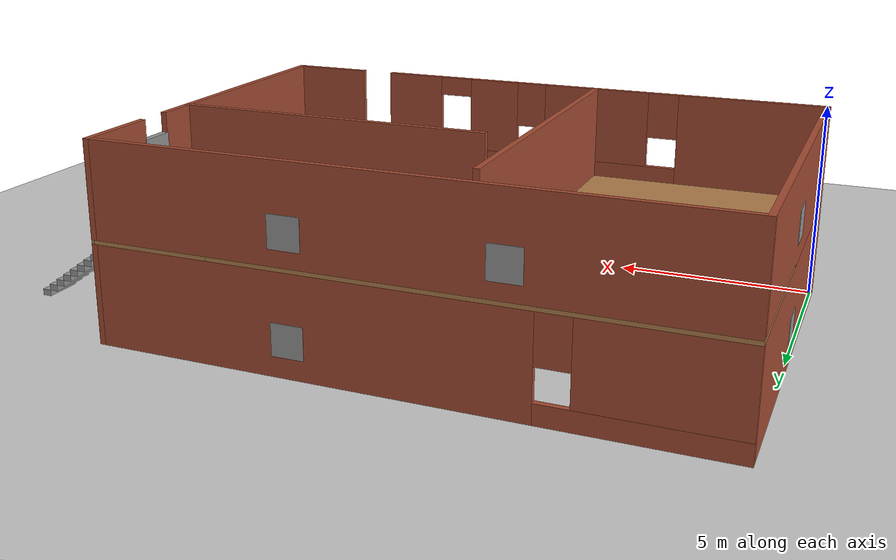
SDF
<sdf version="1.7">
 <world name="default">
  <light name="sun" type="directional">
   <pose>0 0 10 0 -0 0</pose>
   <diffuse>0.8 0.8 0.8 1</diffuse>
   <specular>0.2 0.2 0.2 1</specular>
   <attenuation>
    <range>1000</range>
    <constant>0.9</constant>
    <linear>0.01</linear>
    <quadratic>0.001</quadratic>
   </attenuation>
   <direction>-0.5 0.1 -0.9</direction>
   <spot><inner_angle>0</inner_angle><outer_angle>0</outer_angle><falloff>0</falloff></spot>
  </light>
  <model name="ground_plane">
   <static>1</static>
   <link name="link">
    <collision name="collision">
     <geometry><plane><normal>0 0 1</normal><size>100 100</size></plane></geometry>
     <surface><friction><ode><mu>100</mu><mu2>50</mu2></ode></friction></surface>
    </collision>
    <visual name="visual">
     <cast_shadows>0</cast_shadows>
     <geometry><plane><normal>0 0 1</normal><size>100 100</size></plane></geometry>
     <material>
      <script><uri>file://media/materials/scripts/gazebo.material</uri><name>Gazebo/Grey</name></script>
     </material>
    </visual>
   </link>
  </model>
  <gravity>0 0 -9.8</gravity>
  <magnetic_field>6e-06 2.3e-05 -4.2e-05</magnetic_field>
  <atmosphere type="adiabatic"/>
  <physics type="ode">
   <max_step_size>0.001</max_step_size>
   <real_time_factor>1</real_time_factor>
   <real_time_update_rate>1000</real_time_update_rate>
  </physics>
  <scene><ambient>0.4 0.4 0.4 1</ambient><background>0.7 0.7 0.7 1</background><shadows>1</shadows></scene>
  <audio><device>default</device></audio>
  <spherical_coordinates>
   <surface_model>EARTH_WGS84</surface_model>
   <latitude_deg>0</latitude_deg>
   <longitude_deg>0</longitude_deg>
   <elevation>0</elevation>
   <heading_deg>0</heading_deg>
  </spherical_coordinates>
  <model name="warehouse">
   <pose>9.2125 3.28758 0 0 -0 0</pose>
   <link name="Door_3">
    <collision name="Door_3_Collision">
     <geometry><box><size>0.9 0.17 2</size></box></geometry>
     <pose>0 0 1 0 -0 0</pose>
    </collision>
    <visual name="Door_3_Visual">
     <pose>0 0 1 0 -0 0</pose>
     <geometry><box><size>0.9 0.17 2</size></box></geometry>
     <material>
      <script><uri>file://media/materials/scripts/gazebo.material</uri><name>Gazebo/Grey</name></script>
     </material>
    </visual>
    <pose>5.7875 4.21242 2.5 0 -0 1.57248</pose>
   </link>
   <link name="Floor_0">
    <pose>-1.7125 1.71242 2.5 0 -0 0</pose>
    <visual name="Floor_0_Visual_0">
     <pose>-1.5375 0 0.05 0 -0 0</pose>
     <geometry><box><size>12.075 10.1503 0.1</size></box></geometry>
     <material>
      <script><uri>file://media/materials/scripts/gazebo.material</uri><name>Gazebo/Wood</name></script>
      <ambient>1 1 1 1</ambient>
     </material>
     <meta><layer>1</layer></meta>
    </visual>
    <collision name="Floor_0_Collision_0">
     <geometry><box><size>12.075 10.1503 0.1</size></box></geometry>
     <pose>-1.5375 0 0.05 0 -0 0</pose>
    </collision>
    <visual name="Floor_0_Visual_1">
     <pose>6 0.037581 0.05 0 -0 0</pose>
     <geometry><box><size>3 10.0752 0.1</size></box></geometry>
     <material>
      <script><uri>file://media/materials/scripts/gazebo.material</uri><name>Gazebo/Wood</name></script>
      <ambient>1 1 1 1</ambient>
     </material>
     <meta><layer>1</layer></meta>
    </visual>
    <collision name="Floor_0_Collision_1">
     <geometry><box><size>3 10.0752 0.1</size></box></geometry>
     <pose>6 0.037581 0.05 0 -0 0</pose>
    </collision>
    <visual name="Floor_0_Visual_2">
     <pose>7.5375 -1.5 0.05 0 -0 0</pose>
     <geometry><box><size>0.075 7 0.1</size></box></geometry>
     <material>
      <script><uri>file://media/materials/scripts/gazebo.material</uri><name>Gazebo/Wood</name></script>
      <ambient>1 1 1 1</ambient>
     </material>
     <meta><layer>1</layer></meta>
    </visual>
    <collision name="Floor_0_Collision_2">
     <geometry><box><size>0.075 7 0.1</size></box></geometry>
     <pose>7.5375 -1.5 0.05 0 -0 0</pose>
    </collision>
    <visual name="Floor_0_Visual_3">
     <pose>7.5375 4.03758 0.05 0 -0 0</pose>
     <geometry><box><size>0.075 2.07516 0.1</size></box></geometry>
     <material>
      <script><uri>file://media/materials/scripts/gazebo.material</uri><name>Gazebo/Wood</name></script>
      <ambient>1 1 1 1</ambient>
     </material>
     <meta><layer>1</layer></meta>
    </visual>
    <collision name="Floor_0_Collision_3">
     <geometry><box><size>0.075 2.07516 0.1</size></box></geometry>
     <pose>7.5375 4.03758 0.05 0 -0 0</pose>
    </collision>
   </link>
   <link name="Stairs_0">
    <visual name="Stairs_0_Visual_0">
     <pose>3.2875 -6.67091 0.083333 0 -0 -3.14159</pose>
     <geometry><box><size>1 0.233333 0.166667</size></box></geometry>
     <material>
      <script><uri>file://media/materials/scripts/gazebo.material</uri><name>Gazebo/Grey</name></script>
      <ambient>0.435294 0.454902 0.47451 1</ambient>
     </material>
     <meta><layer>0</layer></meta>
    </visual>
    <collision name="Stairs_0_Collision_0">
     <geometry><box><size>1 0.233333 0.166667</size></box></geometry>
     <pose>3.2875 -6.67091 0.083333 0 -0 -3.14159</pose>
    </collision>
    <visual name="Stairs_0_Visual_1">
     <pose>3.2875 -6.43758 0.25 0 -0 -3.14159</pose>
     <geometry><box><size>1 0.233333 0.166667</size></box></geometry>
     <material>
      <script><uri>file://media/materials/scripts/gazebo.material</uri><name>Gazebo/Grey</name></script>
      <ambient>0.435294 0.454902 0.47451 1</ambient>
     </material>
     <meta><layer>0</layer></meta>
    </visual>
    <collision name="Stairs_0_Collision_1">
     <geometry><box><size>1 0.233333 0.166667</size></box></geometry>
     <pose>3.2875 -6.43758 0.25 0 -0 -3.14159</pose>
    </collision>
    <visual name="Stairs_0_Visual_2">
     <pose>3.2875 -6.20425 0.416667 0 -0 -3.14159</pose>
     <geometry><box><size>1 0.233333 0.166667</size></box></geometry>
     <material>
      <script><uri>file://media/materials/scripts/gazebo.material</uri><name>Gazebo/Grey</name></script>
      <ambient>0.435294 0.454902 0.47451 1</ambient>
     </material>
     <meta><layer>0</layer></meta>
    </visual>
    <collision name="Stairs_0_Collision_2">
     <geometry><box><size>1 0.233333 0.166667</size></box></geometry>
     <pose>3.2875 -6.20425 0.416667 0 -0 -3.14159</pose>
    </collision>
    <visual name="Stairs_0_Visual_3">
     <pose>3.2875 -5.97091 0.583333 0 -0 -3.14159</pose>
     <geometry><box><size>1 0.233333 0.166667</size></box></geometry>
     <material>
      <script><uri>file://media/materials/scripts/gazebo.material</uri><name>Gazebo/Grey</name></script>
      <ambient>0.435294 0.454902 0.47451 1</ambient>
     </material>
     <meta><layer>0</layer></meta>
    </visual>
    <collision name="Stairs_0_Collision_3">
     <geometry><box><size>1 0.233333 0.166667</size></box></geometry>
     <pose>3.2875 -5.97091 0.583333 0 -0 -3.14159</pose>
    </collision>
    <visual name="Stairs_0_Visual_4">
     <pose>3.2875 -5.73758 0.75 0 -0 -3.14159</pose>
     <geometry><box><size>1 0.233333 0.166667</size></box></geometry>
     <material>
      <script><uri>file://media/materials/scripts/gazebo.material</uri><name>Gazebo/Grey</name></script>
      <ambient>0.435294 0.454902 0.47451 1</ambient>
     </material>
     <meta><layer>0</layer></meta>
    </visual>
    <collision name="Stairs_0_Collision_4">
     <geometry><box><size>1 0.233333 0.166667</size></box></geometry>
     <pose>3.2875 -5.73758 0.75 0 -0 -3.14159</pose>
    </collision>
    <visual name="Stairs_0_Visual_5">
     <pose>3.2875 -5.50425 0.916667 0 -0 -3.14159</pose>
     <geometry><box><size>1 0.233333 0.166667</size></box></geometry>
     <material>
      <script><uri>file://media/materials/scripts/gazebo.material</uri><name>Gazebo/Grey</name></script>
      <ambient>0.435294 0.454902 0.47451 1</ambient>
     </material>
     <meta><layer>0</layer></meta>
    </visual>
    <collision name="Stairs_0_Collision_5">
     <geometry><box><size>1 0.233333 0.166667</size></box></geometry>
     <pose>3.2875 -5.50425 0.916667 0 -0 -3.14159</pose>
    </collision>
    <visual name="Stairs_0_Visual_6">
     <pose>3.2875 -5.27091 1.08333 0 -0 -3.14159</pose>
     <geometry><box><size>1 0.233333 0.166667</size></box></geometry>
     <material>
      <script><uri>file://media/materials/scripts/gazebo.material</uri><name>Gazebo/Grey</name></script>
      <ambient>0.435294 0.454902 0.47451 1</ambient>
     </material>
     <meta><layer>0</layer></meta>
    </visual>
    <collision name="Stairs_0_Collision_6">
     <geometry><box><size>1 0.233333 0.166667</size></box></geometry>
     <pose>3.2875 -5.27091 1.08333 0 -0 -3.14159</pose>
    </collision>
    <visual name="Stairs_0_Visual_7">
     <pose>3.2875 -5.03758 1.25 0 -0 -3.14159</pose>
     <geometry><box><size>1 0.233333 0.166667</size></box></geometry>
     <material>
      <script><uri>file://media/materials/scripts/gazebo.material</uri><name>Gazebo/Grey</name></script>
      <ambient>0.435294 0.454902 0.47451 1</ambient>
     </material>
     <meta><layer>0</layer></meta>
    </visual>
    <collision name="Stairs_0_Collision_7">
     <geometry><box><size>1 0.233333 0.166667</size></box></geometry>
     <pose>3.2875 -5.03758 1.25 0 -0 -3.14159</pose>
    </collision>
    <visual name="Stairs_0_Visual_8">
     <pose>3.2875 -4.80425 1.41667 0 -0 -3.14159</pose>
     <geometry><box><size>1 0.233333 0.166667</size></box></geometry>
     <material>
      <script><uri>file://media/materials/scripts/gazebo.material</uri><name>Gazebo/Grey</name></script>
      <ambient>0.435294 0.454902 0.47451 1</ambient>
     </material>
     <meta><layer>0</layer></meta>
    </visual>
    <collision name="Stairs_0_Collision_8">
     <geometry><box><size>1 0.233333 0.166667</size></box></geometry>
     <pose>3.2875 -4.80425 1.41667 0 -0 -3.14159</pose>
    </collision>
    <visual name="Stairs_0_Visual_9">
     <pose>3.2875 -4.57092 1.58333 0 -0 -3.14159</pose>
     <geometry><box><size>1 0.233333 0.166667</size></box></geometry>
     <material>
      <script><uri>file://media/materials/scripts/gazebo.material</uri><name>Gazebo/Grey</name></script>
      <ambient>0.435294 0.454902 0.47451 1</ambient>
     </material>
     <meta><layer>0</layer></meta>
    </visual>
    <collision name="Stairs_0_Collision_9">
     <geometry><box><size>1 0.233333 0.166667</size></box></geometry>
     <pose>3.2875 -4.57092 1.58333 0 -0 -3.14159</pose>
    </collision>
    <visual name="Stairs_0_Visual_10">
     <pose>3.2875 -4.33758 1.75 0 -0 -3.14159</pose>
     <geometry><box><size>1 0.233333 0.166667</size></box></geometry>
     <material>
      <script><uri>file://media/materials/scripts/gazebo.material</uri><name>Gazebo/Grey</name></script>
      <ambient>0.435294 0.454902 0.47451 1</ambient>
     </material>
     <meta><layer>0</layer></meta>
    </visual>
    <collision name="Stairs_0_Collision_10">
     <geometry><box><size>1 0.233333 0.166667</size></box></geometry>
     <pose>3.2875 -4.33758 1.75 0 -0 -3.14159</pose>
    </collision>
    <visual name="Stairs_0_Visual_11">
     <pose>3.2875 -4.10425 1.91667 0 -0 -3.14159</pose>
     <geometry><box><size>1 0.233333 0.166667</size></box></geometry>
     <material>
      <script><uri>file://media/materials/scripts/gazebo.material</uri><name>Gazebo/Grey</name></script>
      <ambient>0.435294 0.454902 0.47451 1</ambient>
     </material>
     <meta><layer>0</layer></meta>
    </visual>
    <collision name="Stairs_0_Collision_11">
     <geometry><box><size>1 0.233333 0.166667</size></box></geometry>
     <pose>3.2875 -4.10425 1.91667 0 -0 -3.14159</pose>
    </collision>
    <visual name="Stairs_0_Visual_12">
     <pose>3.2875 -3.87092 2.08333 0 -0 -3.14159</pose>
     <geometry><box><size>1 0.233333 0.166667</size></box></geometry>
     <material>
      <script><uri>file://media/materials/scripts/gazebo.material</uri><name>Gazebo/Grey</name></script>
      <ambient>0.435294 0.454902 0.47451 1</ambient>
     </material>
     <meta><layer>0</layer></meta>
    </visual>
    <collision name="Stairs_0_Collision_12">
     <geometry><box><size>1 0.233333 0.166667</size></box></geometry>
     <pose>3.2875 -3.87092 2.08333 0 -0 -3.14159</pose>
    </collision>
    <visual name="Stairs_0_Visual_13">
     <pose>3.2875 -3.63758 2.25 0 -0 -3.14159</pose>
     <geometry><box><size>1 0.233333 0.166667</size></box></geometry>
     <material>
      <script><uri>file://media/materials/scripts/gazebo.material</uri><name>Gazebo/Grey</name></script>
      <ambient>0.435294 0.454902 0.47451 1</ambient>
     </material>
     <meta><layer>0</layer></meta>
    </visual>
    <collision name="Stairs_0_Collision_13">
     <geometry><box><size>1 0.233333 0.166667</size></box></geometry>
     <pose>3.2875 -3.63758 2.25 0 -0 -3.14159</pose>
    </collision>
    <visual name="Stairs_0_Visual_14">
     <pose>3.2875 -3.40425 2.41667 0 -0 -3.14159</pose>
     <geometry><box><size>1 0.233333 0.166667</size></box></geometry>
     <material>
      <script><uri>file://media/materials/scripts/gazebo.material</uri><name>Gazebo/Grey</name></script>
      <ambient>0.435294 0.454902 0.47451 1</ambient>
     </material>
     <meta><layer>0</layer></meta>
    </visual>
    <collision name="Stairs_0_Collision_14">
     <geometry><box><size>1 0.233333 0.166667</size></box></geometry>
     <pose>3.2875 -3.40425 2.41667 0 -0 -3.14159</pose>
    </collision>
   </link>
   <link name="Stairs_1">
    <visual name="Stairs_1_Visual_0">
     <pose>9.17083 4.21242 0.083333 0 -0 -1.5708</pose>
     <geometry><box><size>1 0.233333 0.166667</size></box></geometry>
     <material>
      <script><uri>file://media/materials/scripts/gazebo.material</uri><name>Gazebo/Grey</name></script>
      <ambient>0.435294 0.454902 0.47451 1</ambient>
     </material>
     <meta><layer>0</layer></meta>
    </visual>
    <collision name="Stairs_1_Collision_0">
     <geometry><box><size>1 0.233333 0.166667</size></box></geometry>
     <pose>9.17083 4.21242 0.083333 0 -0 -1.5708</pose>
    </collision>
    <visual name="Stairs_1_Visual_1">
     <pose>8.9375 4.21242 0.25 0 -0 -1.5708</pose>
     <geometry><box><size>1 0.233333 0.166667</size></box></geometry>
     <material>
      <script><uri>file://media/materials/scripts/gazebo.material</uri><name>Gazebo/Grey</name></script>
      <ambient>0.435294 0.454902 0.47451 1</ambient>
     </material>
     <meta><layer>0</layer></meta>
    </visual>
    <collision name="Stairs_1_Collision_1">
     <geometry><box><size>1 0.233333 0.166667</size></box></geometry>
     <pose>8.9375 4.21242 0.25 0 -0 -1.5708</pose>
    </collision>
    <visual name="Stairs_1_Visual_2">
     <pose>8.70417 4.21242 0.416667 0 -0 -1.5708</pose>
     <geometry><box><size>1 0.233333 0.166667</size></box></geometry>
     <material>
      <script><uri>file://media/materials/scripts/gazebo.material</uri><name>Gazebo/Grey</name></script>
      <ambient>0.435294 0.454902 0.47451 1</ambient>
     </material>
     <meta><layer>0</layer></meta>
    </visual>
    <collision name="Stairs_1_Collision_2">
     <geometry><box><size>1 0.233333 0.166667</size></box></geometry>
     <pose>8.70417 4.21242 0.416667 0 -0 -1.5708</pose>
    </collision>
    <visual name="Stairs_1_Visual_3">
     <pose>8.47083 4.21242 0.583333 0 -0 -1.5708</pose>
     <geometry><box><size>1 0.233333 0.166667</size></box></geometry>
     <material>
      <script><uri>file://media/materials/scripts/gazebo.material</uri><name>Gazebo/Grey</name></script>
      <ambient>0.435294 0.454902 0.47451 1</ambient>
     </material>
     <meta><layer>0</layer></meta>
    </visual>
    <collision name="Stairs_1_Collision_3">
     <geometry><box><size>1 0.233333 0.166667</size></box></geometry>
     <pose>8.47083 4.21242 0.583333 0 -0 -1.5708</pose>
    </collision>
    <visual name="Stairs_1_Visual_4">
     <pose>8.2375 4.21242 0.75 0 -0 -1.5708</pose>
     <geometry><box><size>1 0.233333 0.166667</size></box></geometry>
     <material>
      <script><uri>file://media/materials/scripts/gazebo.material</uri><name>Gazebo/Grey</name></script>
      <ambient>0.435294 0.454902 0.47451 1</ambient>
     </material>
     <meta><layer>0</layer></meta>
    </visual>
    <collision name="Stairs_1_Collision_4">
     <geometry><box><size>1 0.233333 0.166667</size></box></geometry>
     <pose>8.2375 4.21242 0.75 0 -0 -1.5708</pose>
    </collision>
    <visual name="Stairs_1_Visual_5">
     <pose>8.00417 4.21242 0.916667 0 -0 -1.5708</pose>
     <geometry><box><size>1 0.233333 0.166667</size></box></geometry>
     <material>
      <script><uri>file://media/materials/scripts/gazebo.material</uri><name>Gazebo/Grey</name></script>
      <ambient>0.435294 0.454902 0.47451 1</ambient>
     </material>
     <meta><layer>0</layer></meta>
    </visual>
    <collision name="Stairs_1_Collision_5">
     <geometry><box><size>1 0.233333 0.166667</size></box></geometry>
     <pose>8.00417 4.21242 0.916667 0 -0 -1.5708</pose>
    </collision>
    <visual name="Stairs_1_Visual_6">
     <pose>7.77083 4.21242 1.08333 0 -0 -1.5708</pose>
     <geometry><box><size>1 0.233333 0.166667</size></box></geometry>
     <material>
      <script><uri>file://media/materials/scripts/gazebo.material</uri><name>Gazebo/Grey</name></script>
      <ambient>0.435294 0.454902 0.47451 1</ambient>
     </material>
     <meta><layer>0</layer></meta>
    </visual>
    <collision name="Stairs_1_Collision_6">
     <geometry><box><size>1 0.233333 0.166667</size></box></geometry>
     <pose>7.77083 4.21242 1.08333 0 -0 -1.5708</pose>
    </collision>
    <visual name="Stairs_1_Visual_7">
     <pose>7.5375 4.21242 1.25 0 -0 -1.5708</pose>
     <geometry><box><size>1 0.233333 0.166667</size></box></geometry>
     <material>
      <script><uri>file://media/materials/scripts/gazebo.material</uri><name>Gazebo/Grey</name></script>
      <ambient>0.435294 0.454902 0.47451 1</ambient>
     </material>
     <meta><layer>0</layer></meta>
    </visual>
    <collision name="Stairs_1_Collision_7">
     <geometry><box><size>1 0.233333 0.166667</size></box></geometry>
     <pose>7.5375 4.21242 1.25 0 -0 -1.5708</pose>
    </collision>
    <visual name="Stairs_1_Visual_8">
     <pose>7.30417 4.21242 1.41667 0 -0 -1.5708</pose>
     <geometry><box><size>1 0.233333 0.166667</size></box></geometry>
     <material>
      <script><uri>file://media/materials/scripts/gazebo.material</uri><name>Gazebo/Grey</name></script>
      <ambient>0.435294 0.454902 0.47451 1</ambient>
     </material>
     <meta><layer>0</layer></meta>
    </visual>
    <collision name="Stairs_1_Collision_8">
     <geometry><box><size>1 0.233333 0.166667</size></box></geometry>
     <pose>7.30417 4.21242 1.41667 0 -0 -1.5708</pose>
    </collision>
    <visual name="Stairs_1_Visual_9">
     <pose>7.07083 4.21242 1.58333 0 -0 -1.5708</pose>
     <geometry><box><size>1 0.233333 0.166667</size></box></geometry>
     <material>
      <script><uri>file://media/materials/scripts/gazebo.material</uri><name>Gazebo/Grey</name></script>
      <ambient>0.435294 0.454902 0.47451 1</ambient>
     </material>
     <meta><layer>0</layer></meta>
    </visual>
    <collision name="Stairs_1_Collision_9">
     <geometry><box><size>1 0.233333 0.166667</size></box></geometry>
     <pose>7.07083 4.21242 1.58333 0 -0 -1.5708</pose>
    </collision>
    <visual name="Stairs_1_Visual_10">
     <pose>6.8375 4.21242 1.75 0 -0 -1.5708</pose>
     <geometry><box><size>1 0.233333 0.166667</size></box></geometry>
     <material>
      <script><uri>file://media/materials/scripts/gazebo.material</uri><name>Gazebo/Grey</name></script>
      <ambient>0.435294 0.454902 0.47451 1</ambient>
     </material>
     <meta><layer>0</layer></meta>
    </visual>
    <collision name="Stairs_1_Collision_10">
     <geometry><box><size>1 0.233333 0.166667</size></box></geometry>
     <pose>6.8375 4.21242 1.75 0 -0 -1.5708</pose>
    </collision>
    <visual name="Stairs_1_Visual_11">
     <pose>6.60417 4.21242 1.91667 0 -0 -1.5708</pose>
     <geometry><box><size>1 0.233333 0.166667</size></box></geometry>
     <material>
      <script><uri>file://media/materials/scripts/gazebo.material</uri><name>Gazebo/Grey</name></script>
      <ambient>0.435294 0.454902 0.47451 1</ambient>
     </material>
     <meta><layer>0</layer></meta>
    </visual>
    <collision name="Stairs_1_Collision_11">
     <geometry><box><size>1 0.233333 0.166667</size></box></geometry>
     <pose>6.60417 4.21242 1.91667 0 -0 -1.5708</pose>
    </collision>
    <visual name="Stairs_1_Visual_12">
     <pose>6.37083 4.21242 2.08333 0 -0 -1.5708</pose>
     <geometry><box><size>1 0.233333 0.166667</size></box></geometry>
     <material>
      <script><uri>file://media/materials/scripts/gazebo.material</uri><name>Gazebo/Grey</name></script>
      <ambient>0.435294 0.454902 0.47451 1</ambient>
     </material>
     <meta><layer>0</layer></meta>
    </visual>
    <collision name="Stairs_1_Collision_12">
     <geometry><box><size>1 0.233333 0.166667</size></box></geometry>
     <pose>6.37083 4.21242 2.08333 0 -0 -1.5708</pose>
    </collision>
    <visual name="Stairs_1_Visual_13">
     <pose>6.1375 4.21242 2.25 0 -0 -1.5708</pose>
     <geometry><box><size>1 0.233333 0.166667</size></box></geometry>
     <material>
      <script><uri>file://media/materials/scripts/gazebo.material</uri><name>Gazebo/Grey</name></script>
      <ambient>0.435294 0.454902 0.47451 1</ambient>
     </material>
     <meta><layer>0</layer></meta>
    </visual>
    <collision name="Stairs_1_Collision_13">
     <geometry><box><size>1 0.233333 0.166667</size></box></geometry>
     <pose>6.1375 4.21242 2.25 0 -0 -1.5708</pose>
    </collision>
    <visual name="Stairs_1_Visual_14">
     <pose>5.90417 4.21242 2.41667 0 -0 -1.5708</pose>
     <geometry><box><size>1 0.233333 0.166667</size></box></geometry>
     <material>
      <script><uri>file://media/materials/scripts/gazebo.material</uri><name>Gazebo/Grey</name></script>
      <ambient>0.435294 0.454902 0.47451 1</ambient>
     </material>
     <meta><layer>0</layer></meta>
    </visual>
    <collision name="Stairs_1_Collision_14">
     <geometry><box><size>1 0.233333 0.166667</size></box></geometry>
     <pose>5.90417 4.21242 2.41667 0 -0 -1.5708</pose>
    </collision>
   </link>
   <link name="Wall_0">
    <pose>-1.7125 -3.28758 0 0 -0 0</pose>
    <visual name="Wall_0_Visual_0">
     <pose>-2.7625 0 1.25 0 -0 0</pose>
     <geometry><box><size>9.625 0.15 2.5</size></box></geometry>
     <material>
      <script><uri>file://media/materials/scripts/gazebo.material</uri><name>Gazebo/Bricks</name></script>
      <ambient>1 1 1 1</ambient>
     </material>
     <meta><layer>0</layer></meta>
    </visual>
    <collision name="Wall_0_Collision_0">
     <geometry><box><size>9.625 0.15 2.5</size></box></geometry>
     <pose>-2.7625 0 1.25 0 -0 0</pose>
    </collision>
    <visual name="Wall_0_Visual_1">
     <pose>5.2625 0 1.25 0 -0 0</pose>
     <geometry><box><size>4.625 0.15 2.5</size></box></geometry>
     <material>
      <script><uri>file://media/materials/scripts/gazebo.material</uri><name>Gazebo/Bricks</name></script>
      <ambient>1 1 1 1</ambient>
     </material>
     <meta><layer>0</layer></meta>
    </visual>
    <collision name="Wall_0_Collision_1">
     <geometry><box><size>4.625 0.15 2.5</size></box></geometry>
     <pose>5.2625 0 1.25 0 -0 0</pose>
    </collision>
    <visual name="Wall_0_Visual_2">
     <pose>2.5 0 2.25 0 -0 0</pose>
     <geometry><box><size>0.9 0.15 0.5</size></box></geometry>
     <material>
      <script><uri>file://media/materials/scripts/gazebo.material</uri><name>Gazebo/Bricks</name></script>
      <ambient>1 1 1 1</ambient>
     </material>
     <meta><layer>0</layer></meta>
    </visual>
    <collision name="Wall_0_Collision_2">
     <geometry><box><size>0.9 0.15 0.5</size></box></geometry>
     <pose>2.5 0 2.25 0 -0 0</pose>
    </collision>
   </link>
   <link name="Wall_1">
    <collision name="Wall_1_Collision">
     <geometry><box><size>10.15 0.15 2.5</size></box></geometry>
     <pose>0 0 1.25 0 -0 0</pose>
    </collision>
    <visual name="Wall_1_Visual">
     <pose>0 0 1.25 0 -0 0</pose>
     <geometry><box><size>10.15 0.15 2.5</size></box></geometry>
     <material>
      <script><uri>file://media/materials/scripts/gazebo.material</uri><name>Gazebo/Bricks</name></script>
      <ambient>1 1 1 1</ambient>
     </material>
     <meta><layer>0</layer></meta>
    </visual>
    <pose>5.7875 1.71242 0 0 -0 1.5708</pose>
   </link>
   <link name="Wall_12">
    <collision name="Wall_12_Collision">
     <geometry><box><size>10.15 0.15 2.5</size></box></geometry>
     <pose>0 0 1.25 0 -0 0</pose>
    </collision>
    <visual name="Wall_12_Visual">
     <pose>0 0 1.25 0 -0 0</pose>
     <geometry><box><size>10.15 0.15 2.5</size></box></geometry>
     <material>
      <script><uri>file://media/materials/scripts/gazebo.material</uri><name>Gazebo/Bricks</name></script>
      <ambient>1 1 1 1</ambient>
     </material>
     <meta><layer>1</layer></meta>
    </visual>
    <pose>-9.2125 1.71242 2.5 0 -0 -1.5708</pose>
   </link>
   <link name="Wall_16">
    <collision name="Wall_16_Collision">
     <geometry><box><size>9.15 0.15 2.5</size></box></geometry>
     <pose>0 0 1.25 0 -0 0</pose>
    </collision>
    <visual name="Wall_16_Visual">
     <pose>0 0 1.25 0 -0 0</pose>
     <geometry><box><size>9.15 0.15 2.5</size></box></geometry>
     <material>
      <script><uri>file://media/materials/scripts/gazebo.material</uri><name>Gazebo/Bricks</name></script>
      <ambient>1 1 1 1</ambient>
     </material>
     <meta><layer>1</layer></meta>
    </visual>
    <pose>-3.2125 1.21242 2.5 0 -0 -1.5708</pose>
   </link>
   <link name="Wall_2">
    <pose>-1.7125 6.71242 0 0 -0 3.14159</pose>
    <visual name="Wall_2_Visual_0">
     <pose>-2.2195 0 1.25 0 -0 0</pose>
     <geometry><box><size>10.711 0.15 2.5</size></box></geometry>
     <material>
      <script><uri>file://media/materials/scripts/gazebo.material</uri><name>Gazebo/Bricks</name></script>
      <ambient>1 1 1 1</ambient>
     </material>
     <meta><layer>0</layer></meta>
    </visual>
    <collision name="Wall_2_Collision_0">
     <geometry><box><size>10.711 0.15 2.5</size></box></geometry>
     <pose>-2.2195 0 1.25 0 -0 0</pose>
    </collision>
    <visual name="Wall_2_Visual_1">
     <pose>5.3555 0 0.25 0 -0 0</pose>
     <geometry><box><size>4.439 0.15 0.5</size></box></geometry>
     <material>
      <script><uri>file://media/materials/scripts/gazebo.material</uri><name>Gazebo/Bricks</name></script>
      <ambient>1 1 1 1</ambient>
     </material>
     <meta><layer>0</layer></meta>
    </visual>
    <collision name="Wall_2_Collision_1">
     <geometry><box><size>4.439 0.15 0.5</size></box></geometry>
     <pose>5.3555 0 0.25 0 -0 0</pose>
    </collision>
    <visual name="Wall_2_Visual_2">
     <pose>5.7555 0 1.5 0 -0 0</pose>
     <geometry><box><size>3.639 0.15 2</size></box></geometry>
     <material>
      <script><uri>file://media/materials/scripts/gazebo.material</uri><name>Gazebo/Bricks</name></script>
      <ambient>1 1 1 1</ambient>
     </material>
     <meta><layer>0</layer></meta>
    </visual>
    <collision name="Wall_2_Collision_2">
     <geometry><box><size>3.639 0.15 2</size></box></geometry>
     <pose>5.7555 0 1.5 0 -0 0</pose>
    </collision>
    <visual name="Wall_2_Visual_3">
     <pose>3.536 0 1.9 0 -0 0</pose>
     <geometry><box><size>0.8 0.15 1.2</size></box></geometry>
     <material>
      <script><uri>file://media/materials/scripts/gazebo.material</uri><name>Gazebo/Bricks</name></script>
      <ambient>1 1 1 1</ambient>
     </material>
     <meta><layer>0</layer></meta>
    </visual>
    <collision name="Wall_2_Collision_3">
     <geometry><box><size>0.8 0.15 1.2</size></box></geometry>
     <pose>3.536 0 1.9 0 -0 0</pose>
    </collision>
   </link>
   <link name="Wall_20">
    <collision name="Wall_20_Collision">
     <geometry><box><size>8.15 0.15 2.5</size></box></geometry>
     <pose>0 0 1.25 0 -0 0</pose>
    </collision>
    <visual name="Wall_20_Visual">
     <pose>0 0 1.25 0 -0 0</pose>
     <geometry><box><size>8.15 0.15 2.5</size></box></geometry>
     <material>
      <script><uri>file://media/materials/scripts/gazebo.material</uri><name>Gazebo/Bricks</name></script>
      <ambient>1 1 1 1</ambient>
     </material>
     <meta><layer>1</layer></meta>
    </visual>
    <pose>1.7875 2.71242 2.5 0 -0 0</pose>
   </link>
   <link name="Wall_22">
    <collision name="Wall_22_Collision">
     <geometry><box><size>2.15 0.15 2.5</size></box></geometry>
     <pose>0 0 1.25 0 -0 0</pose>
    </collision>
    <visual name="Wall_22_Visual">
     <pose>0 0 1.25 0 -0 0</pose>
     <geometry><box><size>2.15 0.15 2.5</size></box></geometry>
     <material>
      <script><uri>file://media/materials/scripts/gazebo.material</uri><name>Gazebo/Bricks</name></script>
      <ambient>1 1 1 1</ambient>
     </material>
     <meta><layer>1</layer></meta>
    </visual>
    <pose>4.7875 -3.28758 2.5 0 -0 0</pose>
   </link>
   <link name="Wall_24">
    <collision name="Wall_24_Collision">
     <geometry><box><size>7.15 0.15 2.5</size></box></geometry>
     <pose>0 0 1.25 0 -0 0</pose>
    </collision>
    <visual name="Wall_24_Visual">
     <pose>0 0 1.25 0 -0 0</pose>
     <geometry><box><size>7.15 0.15 2.5</size></box></geometry>
     <material>
      <script><uri>file://media/materials/scripts/gazebo.material</uri><name>Gazebo/Bricks</name></script>
      <ambient>1 1 1 1</ambient>
     </material>
     <meta><layer>1</layer></meta>
    </visual>
    <pose>5.7875 0.212419 2.5 0 -0 -1.5708</pose>
   </link>
   <link name="Wall_26">
    <collision name="Wall_26_Collision">
     <geometry><box><size>2.15 0.15 2.5</size></box></geometry>
     <pose>0 0 1.25 0 -0 0</pose>
    </collision>
    <visual name="Wall_26_Visual">
     <pose>0 0 1.25 0 -0 0</pose>
     <geometry><box><size>2.15 0.15 2.5</size></box></geometry>
     <material>
      <script><uri>file://media/materials/scripts/gazebo.material</uri><name>Gazebo/Bricks</name></script>
      <ambient>1 1 1 1</ambient>
     </material>
     <meta><layer>1</layer></meta>
    </visual>
    <pose>5.7875 5.71242 2.5 0 -0 -1.5708</pose>
   </link>
   <link name="Wall_3">
    <collision name="Wall_3_Collision">
     <geometry><box><size>10.15 0.15 2.5</size></box></geometry>
     <pose>0 0 1.25 0 -0 0</pose>
    </collision>
    <visual name="Wall_3_Visual">
     <pose>0 0 1.25 0 -0 0</pose>
     <geometry><box><size>10.15 0.15 2.5</size></box></geometry>
     <material>
      <script><uri>file://media/materials/scripts/gazebo.material</uri><name>Gazebo/Bricks</name></script>
      <ambient>1 1 1 1</ambient>
     </material>
     <meta><layer>0</layer></meta>
    </visual>
    <pose>-9.2125 1.71242 0 0 -0 -1.5708</pose>
   </link>
   <link name="Wall_7">
    <collision name="Wall_7_Collision">
     <geometry><box><size>15.15 0.15 2.5</size></box></geometry>
     <pose>0 0 1.25 0 -0 0</pose>
    </collision>
    <visual name="Wall_7_Visual">
     <pose>0 0 1.25 0 -0 0</pose>
     <geometry><box><size>15.15 0.15 2.5</size></box></geometry>
     <material>
      <script><uri>file://media/materials/scripts/gazebo.material</uri><name>Gazebo/Bricks</name></script>
      <ambient>1 1 1 1</ambient>
     </material>
     <meta><layer>1</layer></meta>
    </visual>
    <pose>-1.7125 6.71242 2.5 0 -0 3.14159</pose>
   </link>
   <link name="Wall_8">
    <collision name="Wall_8_Collision">
     <geometry><box><size>10.15 0.15 2.5</size></box></geometry>
     <pose>0 0 1.25 0 -0 0</pose>
    </collision>
    <visual name="Wall_8_Visual">
     <pose>0 0 1.25 0 -0 0</pose>
     <geometry><box><size>10.15 0.15 2.5</size></box></geometry>
     <material>
      <script><uri>file://media/materials/scripts/gazebo.material</uri><name>Gazebo/Grey</name></script>
      <ambient>1 1 1 1</ambient>
     </material>
     <meta><layer>1</layer></meta>
    </visual>
    <pose>-9.2125 1.71242 2.5 0 -0 -1.5708</pose>
   </link>
   <link name="Wall_9">
    <pose>-3.2125 -3.28758 2.5 0 -0 0</pose>
    <visual name="Wall_9_Visual_0">
     <pose>-4.16906 0 1.25 0 -0 0</pose>
     <geometry><box><size>3.81189 0.15 2.5</size></box></geometry>
     <material>
      <script><uri>file://media/materials/scripts/gazebo.material</uri><name>Gazebo/Bricks</name></script>
      <ambient>1 1 1 1</ambient>
     </material>
     <meta><layer>1</layer></meta>
    </visual>
    <collision name="Wall_9_Collision_0">
     <geometry><box><size>3.81189 0.15 2.5</size></box></geometry>
     <pose>-4.16906 0 1.25 0 -0 0</pose>
    </collision>
    <visual name="Wall_9_Visual_1">
     <pose>5.27533 0 1.25 0 -0 0</pose>
     <geometry><box><size>1.59934 0.15 2.5</size></box></geometry>
     <material>
      <script><uri>file://media/materials/scripts/gazebo.material</uri><name>Gazebo/Bricks</name></script>
      <ambient>1 1 1 1</ambient>
     </material>
     <meta><layer>1</layer></meta>
    </visual>
    <collision name="Wall_9_Collision_1">
     <geometry><box><size>1.59934 0.15 2.5</size></box></geometry>
     <pose>5.27533 0 1.25 0 -0 0</pose>
    </collision>
    <visual name="Wall_9_Visual_2">
     <pose>0.656274 0 0.25 0 -0 0</pose>
     <geometry><box><size>5.83878 0.15 0.5</size></box></geometry>
     <material>
      <script><uri>file://media/materials/scripts/gazebo.material</uri><name>Gazebo/Bricks</name></script>
      <ambient>1 1 1 1</ambient>
     </material>
     <meta><layer>1</layer></meta>
    </visual>
    <collision name="Wall_9_Collision_2">
     <geometry><box><size>5.83878 0.15 0.5</size></box></geometry>
     <pose>0.656274 0 0.25 0 -0 0</pose>
    </collision>
    <visual name="Wall_9_Visual_3">
     <pose>-0.035225 0 1.5 0 -0 0</pose>
     <geometry><box><size>2.85578 0.15 2</size></box></geometry>
     <material>
      <script><uri>file://media/materials/scripts/gazebo.material</uri><name>Gazebo/Bricks</name></script>
      <ambient>1 1 1 1</ambient>
     </material>
     <meta><layer>1</layer></meta>
    </visual>
    <collision name="Wall_9_Collision_3">
     <geometry><box><size>2.85578 0.15 2</size></box></geometry>
     <pose>-0.035225 0 1.5 0 -0 0</pose>
    </collision>
    <visual name="Wall_9_Visual_4">
     <pose>2.88416 0 1.5 0 -0 0</pose>
     <geometry><box><size>1.383 0.15 2</size></box></geometry>
     <material>
      <script><uri>file://media/materials/scripts/gazebo.material</uri><name>Gazebo/Bricks</name></script>
      <ambient>1 1 1 1</ambient>
     </material>
     <meta><layer>1</layer></meta>
    </visual>
    <collision name="Wall_9_Collision_4">
     <geometry><box><size>1.383 0.15 2</size></box></geometry>
     <pose>2.88416 0 1.5 0 -0 0</pose>
    </collision>
    <visual name="Wall_9_Visual_5">
     <pose>-1.86312 0 1.9 0 -0 0</pose>
     <geometry><box><size>0.8 0.15 1.2</size></box></geometry>
     <material>
      <script><uri>file://media/materials/scripts/gazebo.material</uri><name>Gazebo/Bricks</name></script>
      <ambient>1 1 1 1</ambient>
     </material>
     <meta><layer>1</layer></meta>
    </visual>
    <collision name="Wall_9_Collision_5">
     <geometry><box><size>0.8 0.15 1.2</size></box></geometry>
     <pose>-1.86312 0 1.9 0 -0 0</pose>
    </collision>
    <visual name="Wall_9_Visual_6">
     <pose>1.79267 0 1.9 0 -0 0</pose>
     <geometry><box><size>0.8 0.15 1.2</size></box></geometry>
     <material>
      <script><uri>file://media/materials/scripts/gazebo.material</uri><name>Gazebo/Bricks</name></script>
      <ambient>1 1 1 1</ambient>
     </material>
     <meta><layer>1</layer></meta>
    </visual>
    <collision name="Wall_9_Collision_6">
     <geometry><box><size>0.8 0.15 1.2</size></box></geometry>
     <pose>1.79267 0 1.9 0 -0 0</pose>
    </collision>
    <visual name="Wall_9_Visual_7">
     <pose>4.02566 0 2.25 0 -0 0</pose>
     <geometry><box><size>0.9 0.15 0.5</size></box></geometry>
     <material>
      <script><uri>file://media/materials/scripts/gazebo.material</uri><name>Gazebo/Bricks</name></script>
      <ambient>1 1 1 1</ambient>
     </material>
     <meta><layer>1</layer></meta>
    </visual>
    <collision name="Wall_9_Collision_7">
     <geometry><box><size>0.9 0.15 0.5</size></box></geometry>
     <pose>4.02566 0 2.25 0 -0 0</pose>
    </collision>
   </link>
   <link name="Window_1">
    <collision name="Window_1_Collision">
     <geometry><box><size>0.8 0.17 0.8</size></box></geometry>
     <pose>0 0 0.4 0 -0 0</pose>
    </collision>
    <visual name="Window_1_Visual">
     <pose>0 0 0.4 0 -0 0</pose>
     <geometry><box><size>0.8 0.17 0.8</size></box></geometry>
     <material>
      <script><uri>file://media/materials/scripts/gazebo.material</uri><name>Gazebo/Grey</name></script>
     </material>
    </visual>
    <pose>0.7875 6.71242 0.5 0 -0 0</pose>
   </link>
   <link name="Window_10">
    <collision name="Window_10_Collision">
     <geometry><box><size>0.8 0.17 0.8</size></box></geometry>
     <pose>0 0 0.4 0 -0 0</pose>
    </collision>
    <visual name="Window_10_Visual">
     <pose>0 0 0.4 0 -0 0</pose>
     <geometry><box><size>0.8 0.17 0.8</size></box></geometry>
     <material>
      <script><uri>file://media/materials/scripts/gazebo.material</uri><name>Gazebo/Grey</name></script>
     </material>
    </visual>
    <pose>-4.2125 6.71242 3 0 -0 0</pose>
   </link>
   <link name="Window_11">
    <collision name="Window_11_Collision">
     <geometry><box><size>0.8 0.17 0.8</size></box></geometry>
     <pose>0 0 0.4 0 -0 0</pose>
    </collision>
    <visual name="Window_11_Visual">
     <pose>0 0 0.4 0 -0 0</pose>
     <geometry><box><size>0.8 0.17 0.8</size></box></geometry>
     <material>
      <script><uri>file://media/materials/scripts/gazebo.material</uri><name>Gazebo/Grey</name></script>
     </material>
    </visual>
    <pose>0.7875 6.71242 3 0 -0 0</pose>
   </link>
   <link name="Window_2">
    <collision name="Window_2_Collision">
     <geometry><box><size>0.8 0.17 0.8</size></box></geometry>
     <pose>0 0 0.4 0 -0 0</pose>
    </collision>
    <visual name="Window_2_Visual">
     <pose>0 0 0.4 0 -0 0</pose>
     <geometry><box><size>0.8 0.17 0.8</size></box></geometry>
     <material>
      <script><uri>file://media/materials/scripts/gazebo.material</uri><name>Gazebo/Grey</name></script>
     </material>
    </visual>
    <pose>5.7875 1.71242 0.5 0 -0 1.56927</pose>
   </link>
   <link name="Window_3">
    <collision name="Window_3_Collision">
     <geometry><box><size>0.8 0.17 0.8</size></box></geometry>
     <pose>0 0 0.4 0 -0 0</pose>
    </collision>
    <visual name="Window_3_Visual">
     <pose>0 0 0.4 0 -0 0</pose>
     <geometry><box><size>0.8 0.17 0.8</size></box></geometry>
     <material>
      <script><uri>file://media/materials/scripts/gazebo.material</uri><name>Gazebo/Grey</name></script>
     </material>
    </visual>
    <pose>-9.2125 1.71242 0.5 0 0 -1.56636</pose>
   </link>
   <link name="Window_4">
    <collision name="Window_4_Collision">
     <geometry><box><size>0.8 0.17 0.8</size></box></geometry>
     <pose>0 0 0.4 0 -0 0</pose>
    </collision>
    <visual name="Window_4_Visual">
     <pose>0 0 0.4 0 -0 0</pose>
     <geometry><box><size>0.8 0.17 0.8</size></box></geometry>
     <material>
      <script><uri>file://media/materials/scripts/gazebo.material</uri><name>Gazebo/Grey</name></script>
     </material>
    </visual>
    <pose>-4.2125 -3.28758 0.5 0 -0 0</pose>
   </link>
   <link name="Window_8">
    <collision name="Window_8_Collision">
     <geometry><box><size>0.8 0.17 0.8</size></box></geometry>
     <pose>0 0 0.4 0 -0 0</pose>
    </collision>
    <visual name="Window_8_Visual">
     <pose>0 0 0.4 0 -0 0</pose>
     <geometry><box><size>0.8 0.17 0.8</size></box></geometry>
     <material>
      <script><uri>file://media/materials/scripts/gazebo.material</uri><name>Gazebo/Grey</name></script>
     </material>
    </visual>
    <pose>-9.2125 1.71242 3 0 0 -1.56744</pose>
   </link>
   <link name="Window_9">
    <collision name="Window_9_Collision">
     <geometry><box><size>0.8 0.17 0.8</size></box></geometry>
     <pose>0 0 0.4 0 -0 0</pose>
    </collision>
    <visual name="Window_9_Visual">
     <pose>0 0 0.4 0 -0 0</pose>
     <geometry><box><size>0.8 0.17 0.8</size></box></geometry>
     <material>
      <script><uri>file://media/materials/scripts/gazebo.material</uri><name>Gazebo/Grey</name></script>
     </material>
    </visual>
    <pose>5.7875 1.71242 3 0 -0 1.57353</pose>
   </link>
   <static>1</static>
  </model>
 </world>
</sdf>
